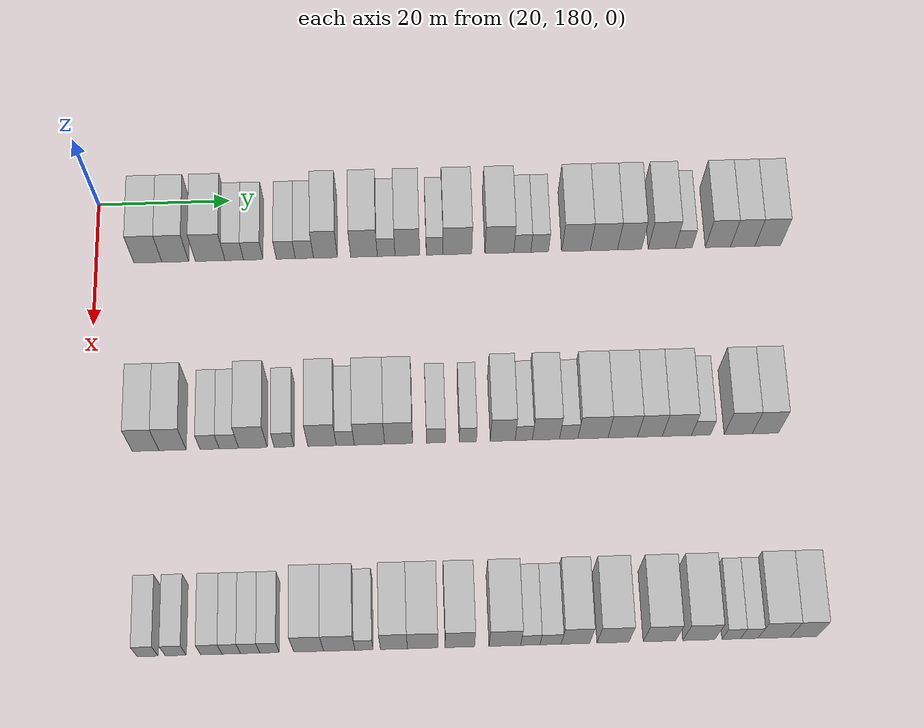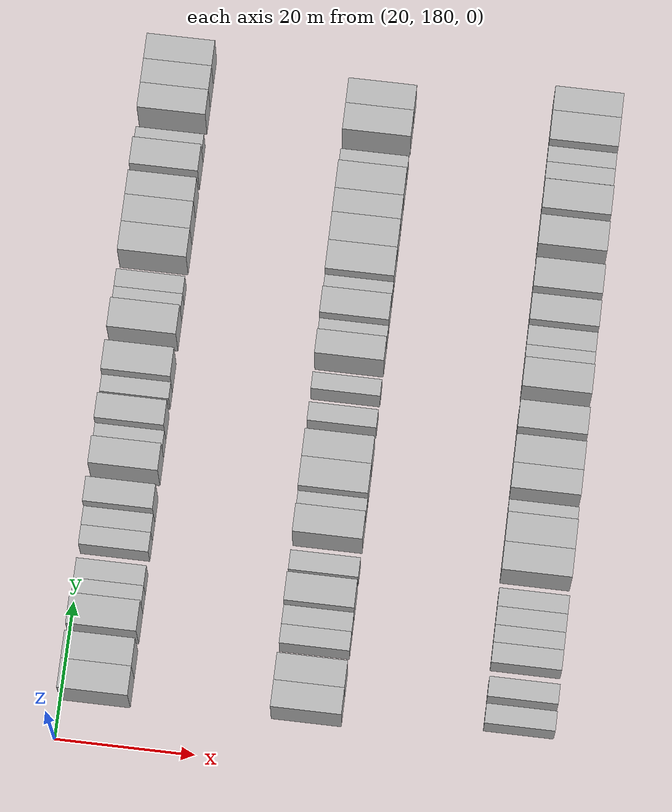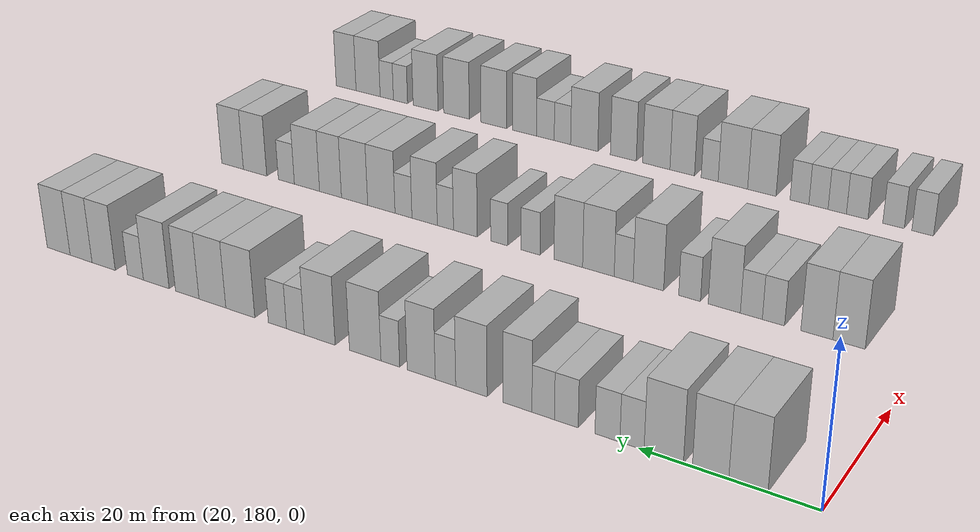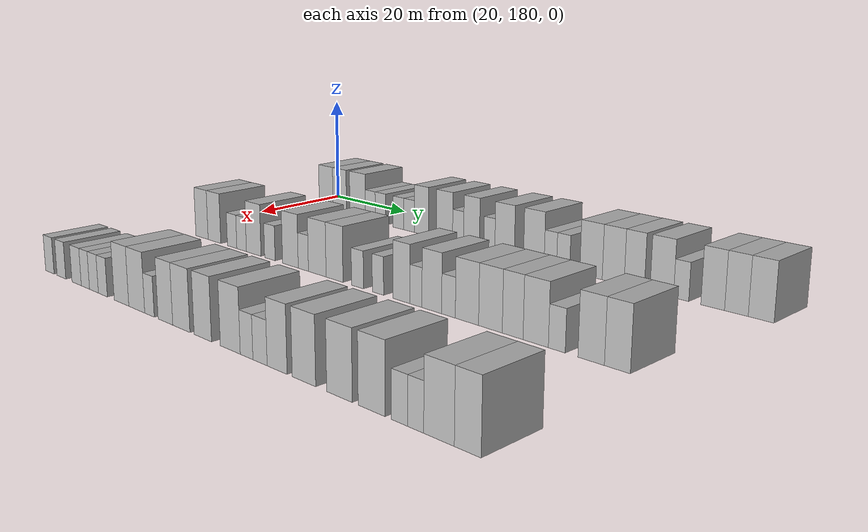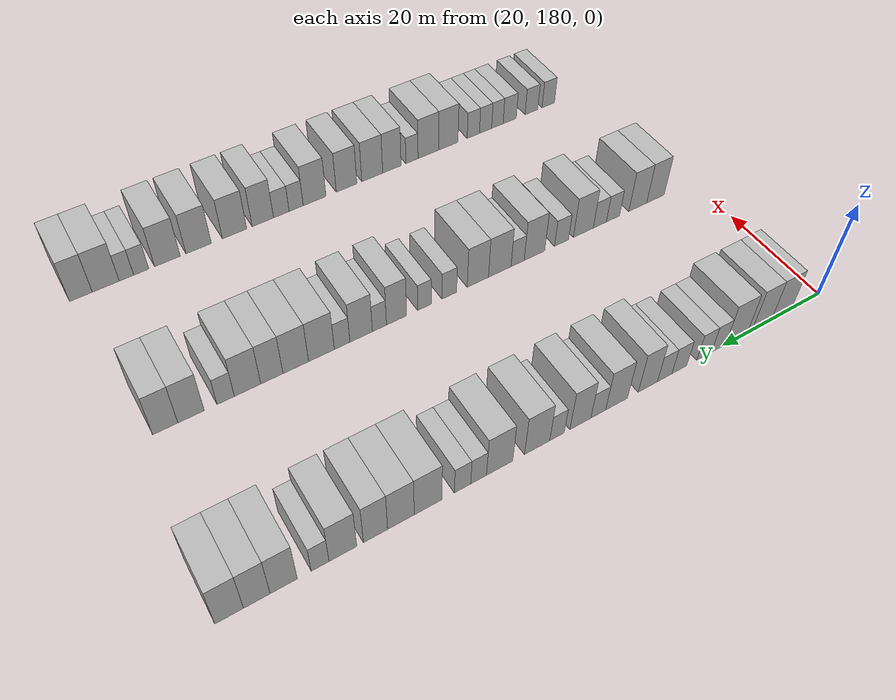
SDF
<sdf version="1.6">
 <world name="default">
  <model name="building_120">
   <static>1</static>
   <pose>25.0000 187.8005 0 0.000000 0.000000 0.000000</pose>
   <link name="link">
    <pose>0 0 4.50 0 0 0</pose>
    <collision name="collision"><geometry><box><size>10.0000 4.2273 9.0000</size></box></geometry></collision>
    <visual name="visual">
     <cast_shadows>0</cast_shadows>
     <geometry><box><size>10.0000 4.2273 9.0000</size></box></geometry>
     <material>
      <script>
       <uri>model://HANNAS_wall/materials/scripts</uri>
       <uri>model://HANNAS_wall/materials/textures</uri>
       <name>vrc/HANNAS_wall</name>
      </script>
     </material>
    </visual>
   </link>
  </model>
  <model name="building_121">
   <static>1</static>
   <pose>25.0000 191.9243 0 0.000000 0.000000 0.000000</pose>
   <link name="link">
    <pose>0 0 4.50 0 0 0</pose>
    <collision name="collision"><geometry><box><size>10.0000 4.0204 9.0000</size></box></geometry></collision>
    <visual name="visual">
     <cast_shadows>0</cast_shadows>
     <geometry><box><size>10.0000 4.0204 9.0000</size></box></geometry>
     <material>
      <script>
       <uri>model://HANNAS_wall/materials/scripts</uri>
       <uri>model://HANNAS_wall/materials/textures</uri>
       <name>vrc/HANNAS_wall</name>
      </script>
     </material>
    </visual>
   </link>
  </model>
  <model name="building_122">
   <static>1</static>
   <pose>25.0000 197.1687 0 0.000000 0.000000 0.000000</pose>
   <link name="link">
    <pose>0 0 4.50 0 0 0</pose>
    <collision name="collision"><geometry><box><size>10.0000 4.4684 9.0000</size></box></geometry></collision>
    <visual name="visual">
     <cast_shadows>0</cast_shadows>
     <geometry><box><size>10.0000 4.4684 9.0000</size></box></geometry>
     <material>
      <script>
       <uri>model://HANNAS_wall/materials/scripts</uri>
       <uri>model://HANNAS_wall/materials/textures</uri>
       <name>vrc/HANNAS_wall</name>
      </script>
     </material>
    </visual>
   </link>
  </model>
  <model name="building_123">
   <static>1</static>
   <pose>25.0000 200.8013 0 0.000000 0.000000 0.000000</pose>
   <link name="link">
    <pose>0 0 3.00 0 0 0</pose>
    <collision name="collision"><geometry><box><size>10.0000 2.7968 6.0000</size></box></geometry></collision>
    <visual name="visual">
     <cast_shadows>0</cast_shadows>
     <geometry><box><size>10.0000 2.7968 6.0000</size></box></geometry>
     <material>
      <script>
       <uri>model://HANNAS_wall/materials/scripts</uri>
       <uri>model://HANNAS_wall/materials/textures</uri>
       <name>vrc/HANNAS_wall</name>
      </script>
     </material>
    </visual>
   </link>
  </model>
  <model name="building_124">
   <static>1</static>
   <pose>25.0000 203.6655 0 0.000000 0.000000 0.000000</pose>
   <link name="link">
    <pose>0 0 3.00 0 0 0</pose>
    <collision name="collision"><geometry><box><size>10.0000 2.9315 6.0000</size></box></geometry></collision>
    <visual name="visual">
     <cast_shadows>0</cast_shadows>
     <geometry><box><size>10.0000 2.9315 6.0000</size></box></geometry>
     <material>
      <script>
       <uri>model://HANNAS_wall/materials/scripts</uri>
       <uri>model://HANNAS_wall/materials/textures</uri>
       <name>vrc/HANNAS_wall</name>
      </script>
     </material>
    </visual>
   </link>
  </model>
  <model name="building_125">
   <static>1</static>
   <pose>25.0000 208.5610 0 0.000000 0.000000 0.000000</pose>
   <link name="link">
    <pose>0 0 3.00 0 0 0</pose>
    <collision name="collision"><geometry><box><size>10.0000 2.8596 6.0000</size></box></geometry></collision>
    <visual name="visual">
     <cast_shadows>0</cast_shadows>
     <geometry><box><size>10.0000 2.8596 6.0000</size></box></geometry>
     <material>
      <script>
       <uri>model://HANNAS_wall/materials/scripts</uri>
       <uri>model://HANNAS_wall/materials/textures</uri>
       <name>vrc/HANNAS_wall</name>
      </script>
     </material>
    </visual>
   </link>
  </model>
  <model name="building_126">
   <static>1</static>
   <pose>25.0000 211.3667 0 0.000000 0.000000 0.000000</pose>
   <link name="link">
    <pose>0 0 3.00 0 0 0</pose>
    <collision name="collision"><geometry><box><size>10.0000 2.7517 6.0000</size></box></geometry></collision>
    <visual name="visual">
     <cast_shadows>0</cast_shadows>
     <geometry><box><size>10.0000 2.7517 6.0000</size></box></geometry>
     <material>
      <script>
       <uri>model://HANNAS_wall/materials/scripts</uri>
       <uri>model://HANNAS_wall/materials/textures</uri>
       <name>vrc/HANNAS_wall</name>
      </script>
     </material>
    </visual>
   </link>
  </model>
  <model name="building_127">
   <static>1</static>
   <pose>25.0000 214.5508 0 0.000000 0.000000 0.000000</pose>
   <link name="link">
    <pose>0 0 4.50 0 0 0</pose>
    <collision name="collision"><geometry><box><size>10.0000 3.6166 9.0000</size></box></geometry></collision>
    <visual name="visual">
     <cast_shadows>0</cast_shadows>
     <geometry><box><size>10.0000 3.6166 9.0000</size></box></geometry>
     <material>
      <script>
       <uri>model://HANNAS_wall/materials/scripts</uri>
       <uri>model://HANNAS_wall/materials/textures</uri>
       <name>vrc/HANNAS_wall</name>
      </script>
     </material>
    </visual>
   </link>
  </model>
  <model name="building_128">
   <static>1</static>
   <pose>25.0000 220.3657 0 0.000000 0.000000 0.000000</pose>
   <link name="link">
    <pose>0 0 4.50 0 0 0</pose>
    <collision name="collision"><geometry><box><size>10.0000 4.0132 9.0000</size></box></geometry></collision>
    <visual name="visual">
     <cast_shadows>0</cast_shadows>
     <geometry><box><size>10.0000 4.0132 9.0000</size></box></geometry>
     <material>
      <script>
       <uri>model://HANNAS_wall/materials/scripts</uri>
       <uri>model://HANNAS_wall/materials/textures</uri>
       <name>vrc/HANNAS_wall</name>
      </script>
     </material>
    </visual>
   </link>
  </model>
  <model name="building_129">
   <static>1</static>
   <pose>25.0000 223.7065 0 0.000000 0.000000 0.000000</pose>
   <link name="link">
    <pose>0 0 3.00 0 0 0</pose>
    <collision name="collision"><geometry><box><size>10.0000 2.6684 6.0000</size></box></geometry></collision>
    <visual name="visual">
     <cast_shadows>0</cast_shadows>
     <geometry><box><size>10.0000 2.6684 6.0000</size></box></geometry>
     <material>
      <script>
       <uri>model://HANNAS_wall/materials/scripts</uri>
       <uri>model://HANNAS_wall/materials/textures</uri>
       <name>vrc/HANNAS_wall</name>
      </script>
     </material>
    </visual>
   </link>
  </model>
  <model name="building_130">
   <static>1</static>
   <pose>25.0000 226.9014 0 0.000000 0.000000 0.000000</pose>
   <link name="link">
    <pose>0 0 4.50 0 0 0</pose>
    <collision name="collision"><geometry><box><size>10.0000 3.7215 9.0000</size></box></geometry></collision>
    <visual name="visual">
     <cast_shadows>0</cast_shadows>
     <geometry><box><size>10.0000 3.7215 9.0000</size></box></geometry>
     <material>
      <script>
       <uri>model://HANNAS_wall/materials/scripts</uri>
       <uri>model://HANNAS_wall/materials/textures</uri>
       <name>vrc/HANNAS_wall</name>
      </script>
     </material>
    </visual>
   </link>
  </model>
  <model name="building_131">
   <static>1</static>
   <pose>25.0000 231.0254 0 0.000000 0.000000 0.000000</pose>
   <link name="link">
    <pose>0 0 3.00 0 0 0</pose>
    <collision name="collision"><geometry><box><size>10.0000 2.5264 6.0000</size></box></geometry></collision>
    <visual name="visual">
     <cast_shadows>0</cast_shadows>
     <geometry><box><size>10.0000 2.5264 6.0000</size></box></geometry>
     <material>
      <script>
       <uri>model://HANNAS_wall/materials/scripts</uri>
       <uri>model://HANNAS_wall/materials/textures</uri>
       <name>vrc/HANNAS_wall</name>
      </script>
     </material>
    </visual>
   </link>
  </model>
  <model name="building_132">
   <static>1</static>
   <pose>25.0000 234.4583 0 0.000000 0.000000 0.000000</pose>
   <link name="link">
    <pose>0 0 4.50 0 0 0</pose>
    <collision name="collision"><geometry><box><size>10.0000 4.3394 9.0000</size></box></geometry></collision>
    <visual name="visual">
     <cast_shadows>0</cast_shadows>
     <geometry><box><size>10.0000 4.3394 9.0000</size></box></geometry>
     <material>
      <script>
       <uri>model://HANNAS_wall/materials/scripts</uri>
       <uri>model://HANNAS_wall/materials/textures</uri>
       <name>vrc/HANNAS_wall</name>
      </script>
     </material>
    </visual>
   </link>
  </model>
  <model name="building_133">
   <static>1</static>
   <pose>25.0000 240.8161 0 0.000000 0.000000 0.000000</pose>
   <link name="link">
    <pose>0 0 4.50 0 0 0</pose>
    <collision name="collision"><geometry><box><size>10.0000 4.3761 9.0000</size></box></geometry></collision>
    <visual name="visual">
     <cast_shadows>0</cast_shadows>
     <geometry><box><size>10.0000 4.3761 9.0000</size></box></geometry>
     <material>
      <script>
       <uri>model://HANNAS_wall/materials/scripts</uri>
       <uri>model://HANNAS_wall/materials/textures</uri>
       <name>vrc/HANNAS_wall</name>
      </script>
     </material>
    </visual>
   </link>
  </model>
  <model name="building_134">
   <static>1</static>
   <pose>25.0000 244.2893 0 0.000000 0.000000 0.000000</pose>
   <link name="link">
    <pose>0 0 3.00 0 0 0</pose>
    <collision name="collision"><geometry><box><size>10.0000 2.5704 6.0000</size></box></geometry></collision>
    <visual name="visual">
     <cast_shadows>0</cast_shadows>
     <geometry><box><size>10.0000 2.5704 6.0000</size></box></geometry>
     <material>
      <script>
       <uri>model://HANNAS_wall/materials/scripts</uri>
       <uri>model://HANNAS_wall/materials/textures</uri>
       <name>vrc/HANNAS_wall</name>
      </script>
     </material>
    </visual>
   </link>
  </model>
  <model name="building_135">
   <static>1</static>
   <pose>25.0000 246.9005 0 0.000000 0.000000 0.000000</pose>
   <link name="link">
    <pose>0 0 3.00 0 0 0</pose>
    <collision name="collision"><geometry><box><size>10.0000 2.6520 6.0000</size></box></geometry></collision>
    <visual name="visual">
     <cast_shadows>0</cast_shadows>
     <geometry><box><size>10.0000 2.6520 6.0000</size></box></geometry>
     <material>
      <script>
       <uri>model://HANNAS_wall/materials/scripts</uri>
       <uri>model://HANNAS_wall/materials/textures</uri>
       <name>vrc/HANNAS_wall</name>
      </script>
     </material>
    </visual>
   </link>
  </model>
  <model name="building_136">
   <static>1</static>
   <pose>25.0000 252.3962 0 0.000000 0.000000 0.000000</pose>
   <link name="link">
    <pose>0 0 4.50 0 0 0</pose>
    <collision name="collision"><geometry><box><size>10.0000 4.3394 9.0000</size></box></geometry></collision>
    <visual name="visual">
     <cast_shadows>0</cast_shadows>
     <geometry><box><size>10.0000 4.3394 9.0000</size></box></geometry>
     <material>
      <script>
       <uri>model://HANNAS_wall/materials/scripts</uri>
       <uri>model://HANNAS_wall/materials/textures</uri>
       <name>vrc/HANNAS_wall</name>
      </script>
     </material>
    </visual>
   </link>
  </model>
  <model name="building_137">
   <static>1</static>
   <pose>25.0000 256.6175 0 0.000000 0.000000 0.000000</pose>
   <link name="link">
    <pose>0 0 4.50 0 0 0</pose>
    <collision name="collision"><geometry><box><size>10.0000 4.1031 9.0000</size></box></geometry></collision>
    <visual name="visual">
     <cast_shadows>0</cast_shadows>
     <geometry><box><size>10.0000 4.1031 9.0000</size></box></geometry>
     <material>
      <script>
       <uri>model://HANNAS_wall/materials/scripts</uri>
       <uri>model://HANNAS_wall/materials/textures</uri>
       <name>vrc/HANNAS_wall</name>
      </script>
     </material>
    </visual>
   </link>
  </model>
  <model name="building_138">
   <static>1</static>
   <pose>25.0000 260.4975 0 0.000000 0.000000 0.000000</pose>
   <link name="link">
    <pose>0 0 4.50 0 0 0</pose>
    <collision name="collision"><geometry><box><size>10.0000 3.6569 9.0000</size></box></geometry></collision>
    <visual name="visual">
     <cast_shadows>0</cast_shadows>
     <geometry><box><size>10.0000 3.6569 9.0000</size></box></geometry>
     <material>
      <script>
       <uri>model://HANNAS_wall/materials/scripts</uri>
       <uri>model://HANNAS_wall/materials/textures</uri>
       <name>vrc/HANNAS_wall</name>
      </script>
     </material>
    </visual>
   </link>
  </model>
  <model name="building_139">
   <static>1</static>
   <pose>25.0000 265.3709 0 0.000000 0.000000 0.000000</pose>
   <link name="link">
    <pose>0 0 4.50 0 0 0</pose>
    <collision name="collision"><geometry><box><size>10.0000 4.0900 9.0000</size></box></geometry></collision>
    <visual name="visual">
     <cast_shadows>0</cast_shadows>
     <geometry><box><size>10.0000 4.0900 9.0000</size></box></geometry>
     <material>
      <script>
       <uri>model://HANNAS_wall/materials/scripts</uri>
       <uri>model://HANNAS_wall/materials/textures</uri>
       <name>vrc/HANNAS_wall</name>
      </script>
     </material>
    </visual>
   </link>
  </model>
  <model name="building_140">
   <static>1</static>
   <pose>25.0000 268.7047 0 0.000000 0.000000 0.000000</pose>
   <link name="link">
    <pose>0 0 3.00 0 0 0</pose>
    <collision name="collision"><geometry><box><size>10.0000 2.5776 6.0000</size></box></geometry></collision>
    <visual name="visual">
     <cast_shadows>0</cast_shadows>
     <geometry><box><size>10.0000 2.5776 6.0000</size></box></geometry>
     <material>
      <script>
       <uri>model://HANNAS_wall/materials/scripts</uri>
       <uri>model://HANNAS_wall/materials/textures</uri>
       <name>vrc/HANNAS_wall</name>
      </script>
     </material>
    </visual>
   </link>
  </model>
  <model name="building_141">
   <static>1</static>
   <pose>25.0000 273.9103 0 0.000000 0.000000 0.000000</pose>
   <link name="link">
    <pose>0 0 4.50 0 0 0</pose>
    <collision name="collision"><geometry><box><size>10.0000 3.8334 9.0000</size></box></geometry></collision>
    <visual name="visual">
     <cast_shadows>0</cast_shadows>
     <geometry><box><size>10.0000 3.8334 9.0000</size></box></geometry>
     <material>
      <script>
       <uri>model://HANNAS_wall/materials/scripts</uri>
       <uri>model://HANNAS_wall/materials/textures</uri>
       <name>vrc/HANNAS_wall</name>
      </script>
     </material>
    </visual>
   </link>
  </model>
  <model name="building_142">
   <static>1</static>
   <pose>25.0000 277.6731 0 0.000000 0.000000 0.000000</pose>
   <link name="link">
    <pose>0 0 4.50 0 0 0</pose>
    <collision name="collision"><geometry><box><size>10.0000 3.6922 9.0000</size></box></geometry></collision>
    <visual name="visual">
     <cast_shadows>0</cast_shadows>
     <geometry><box><size>10.0000 3.6922 9.0000</size></box></geometry>
     <material>
      <script>
       <uri>model://HANNAS_wall/materials/scripts</uri>
       <uri>model://HANNAS_wall/materials/textures</uri>
       <name>vrc/HANNAS_wall</name>
      </script>
     </material>
    </visual>
   </link>
  </model>
  <model name="building_143">
   <static>1</static>
   <pose>25.0000 281.4730 0 0.000000 0.000000 0.000000</pose>
   <link name="link">
    <pose>0 0 4.50 0 0 0</pose>
    <collision name="collision"><geometry><box><size>10.0000 3.9077 9.0000</size></box></geometry></collision>
    <visual name="visual">
     <cast_shadows>0</cast_shadows>
     <geometry><box><size>10.0000 3.9077 9.0000</size></box></geometry>
     <material>
      <script>
       <uri>model://HANNAS_wall/materials/scripts</uri>
       <uri>model://HANNAS_wall/materials/textures</uri>
       <name>vrc/HANNAS_wall</name>
      </script>
     </material>
    </visual>
   </link>
  </model>
  <model name="building_257">
   <static>1</static>
   <pose>55.0000 188.4252 0 0.000000 0.000000 0.000000</pose>
   <link name="link">
    <pose>0 0 4.50 0 0 0</pose>
    <collision name="collision"><geometry><box><size>10.0000 3.8696 9.0000</size></box></geometry></collision>
    <visual name="visual">
     <cast_shadows>0</cast_shadows>
     <geometry><box><size>10.0000 3.8696 9.0000</size></box></geometry>
     <material>
      <script>
       <uri>model://HANNAS_wall/materials/scripts</uri>
       <uri>model://HANNAS_wall/materials/textures</uri>
       <name>vrc/HANNAS_wall</name>
      </script>
     </material>
    </visual>
   </link>
  </model>
  <model name="building_258">
   <static>1</static>
   <pose>55.0000 192.3124 0 0.000000 0.000000 0.000000</pose>
   <link name="link">
    <pose>0 0 4.50 0 0 0</pose>
    <collision name="collision"><geometry><box><size>10.0000 3.9046 9.0000</size></box></geometry></collision>
    <visual name="visual">
     <cast_shadows>0</cast_shadows>
     <geometry><box><size>10.0000 3.9046 9.0000</size></box></geometry>
     <material>
      <script>
       <uri>model://HANNAS_wall/materials/scripts</uri>
       <uri>model://HANNAS_wall/materials/textures</uri>
       <name>vrc/HANNAS_wall</name>
      </script>
     </material>
    </visual>
   </link>
  </model>
  <model name="building_259">
   <static>1</static>
   <pose>55.0000 197.6571 0 0.000000 0.000000 0.000000</pose>
   <link name="link">
    <pose>0 0 3.00 0 0 0</pose>
    <collision name="collision"><geometry><box><size>10.0000 2.7849 6.0000</size></box></geometry></collision>
    <visual name="visual">
     <cast_shadows>0</cast_shadows>
     <geometry><box><size>10.0000 2.7849 6.0000</size></box></geometry>
     <material>
      <script>
       <uri>model://HANNAS_wall/materials/scripts</uri>
       <uri>model://HANNAS_wall/materials/textures</uri>
       <name>vrc/HANNAS_wall</name>
      </script>
     </material>
    </visual>
   </link>
  </model>
  <model name="building_260">
   <static>1</static>
   <pose>55.0000 200.4428 0 0.000000 0.000000 0.000000</pose>
   <link name="link">
    <pose>0 0 3.00 0 0 0</pose>
    <collision name="collision"><geometry><box><size>10.0000 2.7865 6.0000</size></box></geometry></collision>
    <visual name="visual">
     <cast_shadows>0</cast_shadows>
     <geometry><box><size>10.0000 2.7865 6.0000</size></box></geometry>
     <material>
      <script>
       <uri>model://HANNAS_wall/materials/scripts</uri>
       <uri>model://HANNAS_wall/materials/textures</uri>
       <name>vrc/HANNAS_wall</name>
      </script>
     </material>
    </visual>
   </link>
  </model>
  <model name="building_261">
   <static>1</static>
   <pose>55.0000 203.9054 0 0.000000 0.000000 0.000000</pose>
   <link name="link">
    <pose>0 0 4.50 0 0 0</pose>
    <collision name="collision"><geometry><box><size>10.0000 4.1386 9.0000</size></box></geometry></collision>
    <visual name="visual">
     <cast_shadows>0</cast_shadows>
     <geometry><box><size>10.0000 4.1386 9.0000</size></box></geometry>
     <material>
      <script>
       <uri>model://HANNAS_wall/materials/scripts</uri>
       <uri>model://HANNAS_wall/materials/textures</uri>
       <name>vrc/HANNAS_wall</name>
      </script>
     </material>
    </visual>
   </link>
  </model>
  <model name="building_262">
   <static>1</static>
   <pose>55.0000 208.4081 0 0.000000 0.000000 0.000000</pose>
   <link name="link">
    <pose>0 0 3.00 0 0 0</pose>
    <collision name="collision"><geometry><box><size>10.0000 2.8669 6.0000</size></box></geometry></collision>
    <visual name="visual">
     <cast_shadows>0</cast_shadows>
     <geometry><box><size>10.0000 2.8669 6.0000</size></box></geometry>
     <material>
      <script>
       <uri>model://HANNAS_wall/materials/scripts</uri>
       <uri>model://HANNAS_wall/materials/textures</uri>
       <name>vrc/HANNAS_wall</name>
      </script>
     </material>
    </visual>
   </link>
  </model>
  <model name="building_263">
   <static>1</static>
   <pose>55.0000 213.8938 0 0.000000 0.000000 0.000000</pose>
   <link name="link">
    <pose>0 0 4.50 0 0 0</pose>
    <collision name="collision"><geometry><box><size>10.0000 4.1045 9.0000</size></box></geometry></collision>
    <visual name="visual">
     <cast_shadows>0</cast_shadows>
     <geometry><box><size>10.0000 4.1045 9.0000</size></box></geometry>
     <material>
      <script>
       <uri>model://HANNAS_wall/materials/scripts</uri>
       <uri>model://HANNAS_wall/materials/textures</uri>
       <name>vrc/HANNAS_wall</name>
      </script>
     </material>
    </visual>
   </link>
  </model>
  <model name="building_264">
   <static>1</static>
   <pose>55.0000 217.2453 0 0.000000 0.000000 0.000000</pose>
   <link name="link">
    <pose>0 0 3.00 0 0 0</pose>
    <collision name="collision"><geometry><box><size>10.0000 2.5987 6.0000</size></box></geometry></collision>
    <visual name="visual">
     <cast_shadows>0</cast_shadows>
     <geometry><box><size>10.0000 2.5987 6.0000</size></box></geometry>
     <material>
      <script>
       <uri>model://HANNAS_wall/materials/scripts</uri>
       <uri>model://HANNAS_wall/materials/textures</uri>
       <name>vrc/HANNAS_wall</name>
      </script>
     </material>
    </visual>
   </link>
  </model>
  <model name="building_265">
   <static>1</static>
   <pose>55.0000 220.7393 0 0.000000 0.000000 0.000000</pose>
   <link name="link">
    <pose>0 0 4.50 0 0 0</pose>
    <collision name="collision"><geometry><box><size>10.0000 4.3893 9.0000</size></box></geometry></collision>
    <visual name="visual">
     <cast_shadows>0</cast_shadows>
     <geometry><box><size>10.0000 4.3893 9.0000</size></box></geometry>
     <material>
      <script>
       <uri>model://HANNAS_wall/materials/scripts</uri>
       <uri>model://HANNAS_wall/materials/textures</uri>
       <name>vrc/HANNAS_wall</name>
      </script>
     </material>
    </visual>
   </link>
  </model>
  <model name="building_266">
   <static>1</static>
   <pose>55.0000 224.9621 0 0.000000 0.000000 0.000000</pose>
   <link name="link">
    <pose>0 0 4.50 0 0 0</pose>
    <collision name="collision"><geometry><box><size>10.0000 4.0562 9.0000</size></box></geometry></collision>
    <visual name="visual">
     <cast_shadows>0</cast_shadows>
     <geometry><box><size>10.0000 4.0562 9.0000</size></box></geometry>
     <material>
      <script>
       <uri>model://HANNAS_wall/materials/scripts</uri>
       <uri>model://HANNAS_wall/materials/textures</uri>
       <name>vrc/HANNAS_wall</name>
      </script>
     </material>
    </visual>
   </link>
  </model>
  <model name="building_267">
   <static>1</static>
   <pose>55.0000 230.3581 0 0.000000 0.000000 0.000000</pose>
   <link name="link">
    <pose>0 0 3.00 0 0 0</pose>
    <collision name="collision"><geometry><box><size>10.0000 2.7359 6.0000</size></box></geometry></collision>
    <visual name="visual">
     <cast_shadows>0</cast_shadows>
     <geometry><box><size>10.0000 2.7359 6.0000</size></box></geometry>
     <material>
      <script>
       <uri>model://HANNAS_wall/materials/scripts</uri>
       <uri>model://HANNAS_wall/materials/textures</uri>
       <name>vrc/HANNAS_wall</name>
      </script>
     </material>
    </visual>
   </link>
  </model>
  <model name="building_268">
   <static>1</static>
   <pose>55.0000 234.9723 0 0.000000 0.000000 0.000000</pose>
   <link name="link">
    <pose>0 0 3.00 0 0 0</pose>
    <collision name="collision"><geometry><box><size>10.0000 2.4926 6.0000</size></box></geometry></collision>
    <visual name="visual">
     <cast_shadows>0</cast_shadows>
     <geometry><box><size>10.0000 2.4926 6.0000</size></box></geometry>
     <material>
      <script>
       <uri>model://HANNAS_wall/materials/scripts</uri>
       <uri>model://HANNAS_wall/materials/textures</uri>
       <name>vrc/HANNAS_wall</name>
      </script>
     </material>
    </visual>
   </link>
  </model>
  <model name="building_269">
   <static>1</static>
   <pose>55.0000 240.0213 0 0.000000 0.000000 0.000000</pose>
   <link name="link">
    <pose>0 0 4.50 0 0 0</pose>
    <collision name="collision"><geometry><box><size>10.0000 3.6052 9.0000</size></box></geometry></collision>
    <visual name="visual">
     <cast_shadows>0</cast_shadows>
     <geometry><box><size>10.0000 3.6052 9.0000</size></box></geometry>
     <material>
      <script>
       <uri>model://HANNAS_wall/materials/scripts</uri>
       <uri>model://HANNAS_wall/materials/textures</uri>
       <name>vrc/HANNAS_wall</name>
      </script>
     </material>
    </visual>
   </link>
  </model>
  <model name="building_270">
   <static>1</static>
   <pose>55.0000 243.0652 0 0.000000 0.000000 0.000000</pose>
   <link name="link">
    <pose>0 0 3.00 0 0 0</pose>
    <collision name="collision"><geometry><box><size>10.0000 2.4827 6.0000</size></box></geometry></collision>
    <visual name="visual">
     <cast_shadows>0</cast_shadows>
     <geometry><box><size>10.0000 2.4827 6.0000</size></box></geometry>
     <material>
      <script>
       <uri>model://HANNAS_wall/materials/scripts</uri>
       <uri>model://HANNAS_wall/materials/textures</uri>
       <name>vrc/HANNAS_wall</name>
      </script>
     </material>
    </visual>
   </link>
  </model>
  <model name="building_271">
   <static>1</static>
   <pose>55.0000 246.2751 0 0.000000 0.000000 0.000000</pose>
   <link name="link">
    <pose>0 0 4.50 0 0 0</pose>
    <collision name="collision"><geometry><box><size>10.0000 3.9370 9.0000</size></box></geometry></collision>
    <visual name="visual">
     <cast_shadows>0</cast_shadows>
     <geometry><box><size>10.0000 3.9370 9.0000</size></box></geometry>
     <material>
      <script>
       <uri>model://HANNAS_wall/materials/scripts</uri>
       <uri>model://HANNAS_wall/materials/textures</uri>
       <name>vrc/HANNAS_wall</name>
      </script>
     </material>
    </visual>
   </link>
  </model>
  <model name="building_272">
   <static>1</static>
   <pose>55.0000 249.5749 0 0.000000 0.000000 0.000000</pose>
   <link name="link">
    <pose>0 0 3.00 0 0 0</pose>
    <collision name="collision"><geometry><box><size>10.0000 2.6627 6.0000</size></box></geometry></collision>
    <visual name="visual">
     <cast_shadows>0</cast_shadows>
     <geometry><box><size>10.0000 2.6627 6.0000</size></box></geometry>
     <material>
      <script>
       <uri>model://HANNAS_wall/materials/scripts</uri>
       <uri>model://HANNAS_wall/materials/textures</uri>
       <name>vrc/HANNAS_wall</name>
      </script>
     </material>
    </visual>
   </link>
  </model>
  <model name="building_273">
   <static>1</static>
   <pose>55.0000 253.0915 0 0.000000 0.000000 0.000000</pose>
   <link name="link">
    <pose>0 0 4.50 0 0 0</pose>
    <collision name="collision"><geometry><box><size>10.0000 4.3704 9.0000</size></box></geometry></collision>
    <visual name="visual">
     <cast_shadows>0</cast_shadows>
     <geometry><box><size>10.0000 4.3704 9.0000</size></box></geometry>
     <material>
      <script>
       <uri>model://HANNAS_wall/materials/scripts</uri>
       <uri>model://HANNAS_wall/materials/textures</uri>
       <name>vrc/HANNAS_wall</name>
      </script>
     </material>
    </visual>
   </link>
  </model>
  <model name="building_274">
   <static>1</static>
   <pose>55.0000 257.4136 0 0.000000 0.000000 0.000000</pose>
   <link name="link">
    <pose>0 0 4.50 0 0 0</pose>
    <collision name="collision"><geometry><box><size>10.0000 4.2739 9.0000</size></box></geometry></collision>
    <visual name="visual">
     <cast_shadows>0</cast_shadows>
     <geometry><box><size>10.0000 4.2739 9.0000</size></box></geometry>
     <material>
      <script>
       <uri>model://HANNAS_wall/materials/scripts</uri>
       <uri>model://HANNAS_wall/materials/textures</uri>
       <name>vrc/HANNAS_wall</name>
      </script>
     </material>
    </visual>
   </link>
  </model>
  <model name="building_275">
   <static>1</static>
   <pose>55.0000 261.3631 0 0.000000 0.000000 0.000000</pose>
   <link name="link">
    <pose>0 0 4.50 0 0 0</pose>
    <collision name="collision"><geometry><box><size>10.0000 3.6250 9.0000</size></box></geometry></collision>
    <visual name="visual">
     <cast_shadows>0</cast_shadows>
     <geometry><box><size>10.0000 3.6250 9.0000</size></box></geometry>
     <material>
      <script>
       <uri>model://HANNAS_wall/materials/scripts</uri>
       <uri>model://HANNAS_wall/materials/textures</uri>
       <name>vrc/HANNAS_wall</name>
      </script>
     </material>
    </visual>
   </link>
  </model>
  <model name="building_276">
   <static>1</static>
   <pose>55.0000 265.2939 0 0.000000 0.000000 0.000000</pose>
   <link name="link">
    <pose>0 0 4.50 0 0 0</pose>
    <collision name="collision"><geometry><box><size>10.0000 4.2366 9.0000</size></box></geometry></collision>
    <visual name="visual">
     <cast_shadows>0</cast_shadows>
     <geometry><box><size>10.0000 4.2366 9.0000</size></box></geometry>
     <material>
      <script>
       <uri>model://HANNAS_wall/materials/scripts</uri>
       <uri>model://HANNAS_wall/materials/textures</uri>
       <name>vrc/HANNAS_wall</name>
      </script>
     </material>
    </visual>
   </link>
  </model>
  <model name="building_277">
   <static>1</static>
   <pose>55.0000 268.7820 0 0.000000 0.000000 0.000000</pose>
   <link name="link">
    <pose>0 0 3.00 0 0 0</pose>
    <collision name="collision"><geometry><box><size>10.0000 2.7397 6.0000</size></box></geometry></collision>
    <visual name="visual">
     <cast_shadows>0</cast_shadows>
     <geometry><box><size>10.0000 2.7397 6.0000</size></box></geometry>
     <material>
      <script>
       <uri>model://HANNAS_wall/materials/scripts</uri>
       <uri>model://HANNAS_wall/materials/textures</uri>
       <name>vrc/HANNAS_wall</name>
      </script>
     </material>
    </visual>
   </link>
  </model>
  <model name="building_278">
   <static>1</static>
   <pose>55.0000 274.1859 0 0.000000 0.000000 0.000000</pose>
   <link name="link">
    <pose>0 0 4.50 0 0 0</pose>
    <collision name="collision"><geometry><box><size>10.0000 4.0681 9.0000</size></box></geometry></collision>
    <visual name="visual">
     <cast_shadows>0</cast_shadows>
     <geometry><box><size>10.0000 4.0681 9.0000</size></box></geometry>
     <material>
      <script>
       <uri>model://HANNAS_wall/materials/scripts</uri>
       <uri>model://HANNAS_wall/materials/textures</uri>
       <name>vrc/HANNAS_wall</name>
      </script>
     </material>
    </visual>
   </link>
  </model>
  <model name="building_279">
   <static>1</static>
   <pose>55.0000 278.1350 0 0.000000 0.000000 0.000000</pose>
   <link name="link">
    <pose>0 0 4.50 0 0 0</pose>
    <collision name="collision"><geometry><box><size>10.0000 3.8301 9.0000</size></box></geometry></collision>
    <visual name="visual">
     <cast_shadows>0</cast_shadows>
     <geometry><box><size>10.0000 3.8301 9.0000</size></box></geometry>
     <material>
      <script>
       <uri>model://HANNAS_wall/materials/scripts</uri>
       <uri>model://HANNAS_wall/materials/textures</uri>
       <name>vrc/HANNAS_wall</name>
      </script>
     </material>
    </visual>
   </link>
  </model>
  <model name="building_400">
   <static>1</static>
   <pose>85.0000 189.6875 0 0.000000 0.000000 0.000000</pose>
   <link name="link">
    <pose>0 0 3.00 0 0 0</pose>
    <collision name="collision"><geometry><box><size>10.0000 2.8605 6.0000</size></box></geometry></collision>
    <visual name="visual">
     <cast_shadows>0</cast_shadows>
     <geometry><box><size>10.0000 2.8605 6.0000</size></box></geometry>
     <material>
      <script>
       <uri>model://HANNAS_wall/materials/scripts</uri>
       <uri>model://HANNAS_wall/materials/textures</uri>
       <name>vrc/HANNAS_wall</name>
      </script>
     </material>
    </visual>
   </link>
  </model>
  <model name="building_401">
   <static>1</static>
   <pose>85.0000 193.5605 0 0.000000 0.000000 0.000000</pose>
   <link name="link">
    <pose>0 0 3.00 0 0 0</pose>
    <collision name="collision"><geometry><box><size>10.0000 2.8855 6.0000</size></box></geometry></collision>
    <visual name="visual">
     <cast_shadows>0</cast_shadows>
     <geometry><box><size>10.0000 2.8855 6.0000</size></box></geometry>
     <material>
      <script>
       <uri>model://HANNAS_wall/materials/scripts</uri>
       <uri>model://HANNAS_wall/materials/textures</uri>
       <name>vrc/HANNAS_wall</name>
      </script>
     </material>
    </visual>
   </link>
  </model>
  <model name="building_402">
   <static>1</static>
   <pose>85.0000 198.4769 0 0.000000 0.000000 0.000000</pose>
   <link name="link">
    <pose>0 0 3.00 0 0 0</pose>
    <collision name="collision"><geometry><box><size>10.0000 2.9473 6.0000</size></box></geometry></collision>
    <visual name="visual">
     <cast_shadows>0</cast_shadows>
     <geometry><box><size>10.0000 2.9473 6.0000</size></box></geometry>
     <material>
      <script>
       <uri>model://HANNAS_wall/materials/scripts</uri>
       <uri>model://HANNAS_wall/materials/textures</uri>
       <name>vrc/HANNAS_wall</name>
      </script>
     </material>
    </visual>
   </link>
  </model>
  <model name="building_403">
   <static>1</static>
   <pose>85.0000 201.2212 0 0.000000 0.000000 0.000000</pose>
   <link name="link">
    <pose>0 0 3.00 0 0 0</pose>
    <collision name="collision"><geometry><box><size>10.0000 2.5412 6.0000</size></box></geometry></collision>
    <visual name="visual">
     <cast_shadows>0</cast_shadows>
     <geometry><box><size>10.0000 2.5412 6.0000</size></box></geometry>
     <material>
      <script>
       <uri>model://HANNAS_wall/materials/scripts</uri>
       <uri>model://HANNAS_wall/materials/textures</uri>
       <name>vrc/HANNAS_wall</name>
      </script>
     </material>
    </visual>
   </link>
  </model>
  <model name="building_404">
   <static>1</static>
   <pose>85.0000 203.8320 0 0.000000 0.000000 0.000000</pose>
   <link name="link">
    <pose>0 0 3.00 0 0 0</pose>
    <collision name="collision"><geometry><box><size>10.0000 2.6804 6.0000</size></box></geometry></collision>
    <visual name="visual">
     <cast_shadows>0</cast_shadows>
     <geometry><box><size>10.0000 2.6804 6.0000</size></box></geometry>
     <material>
      <script>
       <uri>model://HANNAS_wall/materials/scripts</uri>
       <uri>model://HANNAS_wall/materials/textures</uri>
       <name>vrc/HANNAS_wall</name>
      </script>
     </material>
    </visual>
   </link>
  </model>
  <model name="building_405">
   <static>1</static>
   <pose>85.0000 206.5065 0 0.000000 0.000000 0.000000</pose>
   <link name="link">
    <pose>0 0 3.00 0 0 0</pose>
    <collision name="collision"><geometry><box><size>10.0000 2.6688 6.0000</size></box></geometry></collision>
    <visual name="visual">
     <cast_shadows>0</cast_shadows>
     <geometry><box><size>10.0000 2.6688 6.0000</size></box></geometry>
     <material>
      <script>
       <uri>model://HANNAS_wall/materials/scripts</uri>
       <uri>model://HANNAS_wall/materials/textures</uri>
       <name>vrc/HANNAS_wall</name>
      </script>
     </material>
    </visual>
   </link>
  </model>
  <model name="building_406">
   <static>1</static>
   <pose>85.0000 211.8973 0 0.000000 0.000000 0.000000</pose>
   <link name="link">
    <pose>0 0 4.50 0 0 0</pose>
    <collision name="collision"><geometry><box><size>10.0000 4.1127 9.0000</size></box></geometry></collision>
    <visual name="visual">
     <cast_shadows>0</cast_shadows>
     <geometry><box><size>10.0000 4.1127 9.0000</size></box></geometry>
     <material>
      <script>
       <uri>model://HANNAS_wall/materials/scripts</uri>
       <uri>model://HANNAS_wall/materials/textures</uri>
       <name>vrc/HANNAS_wall</name>
      </script>
     </material>
    </visual>
   </link>
  </model>
  <model name="building_407">
   <static>1</static>
   <pose>85.0000 216.1263 0 0.000000 0.000000 0.000000</pose>
   <link name="link">
    <pose>0 0 4.50 0 0 0</pose>
    <collision name="collision"><geometry><box><size>10.0000 4.3455 9.0000</size></box></geometry></collision>
    <visual name="visual">
     <cast_shadows>0</cast_shadows>
     <geometry><box><size>10.0000 4.3455 9.0000</size></box></geometry>
     <material>
      <script>
       <uri>model://HANNAS_wall/materials/scripts</uri>
       <uri>model://HANNAS_wall/materials/textures</uri>
       <name>vrc/HANNAS_wall</name>
      </script>
     </material>
    </visual>
   </link>
  </model>
  <model name="building_408">
   <static>1</static>
   <pose>85.0000 219.5608 0 0.000000 0.000000 0.000000</pose>
   <link name="link">
    <pose>0 0 3.00 0 0 0</pose>
    <collision name="collision"><geometry><box><size>10.0000 2.5234 6.0000</size></box></geometry></collision>
    <visual name="visual">
     <cast_shadows>0</cast_shadows>
     <geometry><box><size>10.0000 2.5234 6.0000</size></box></geometry>
     <material>
      <script>
       <uri>model://HANNAS_wall/materials/scripts</uri>
       <uri>model://HANNAS_wall/materials/textures</uri>
       <name>vrc/HANNAS_wall</name>
      </script>
     </material>
    </visual>
   </link>
  </model>
  <model name="building_409">
   <static>1</static>
   <pose>85.0000 223.6883 0 0.000000 0.000000 0.000000</pose>
   <link name="link">
    <pose>0 0 4.50 0 0 0</pose>
    <collision name="collision"><geometry><box><size>10.0000 3.7315 9.0000</size></box></geometry></collision>
    <visual name="visual">
     <cast_shadows>0</cast_shadows>
     <geometry><box><size>10.0000 3.7315 9.0000</size></box></geometry>
     <material>
      <script>
       <uri>model://HANNAS_wall/materials/scripts</uri>
       <uri>model://HANNAS_wall/materials/textures</uri>
       <name>vrc/HANNAS_wall</name>
      </script>
     </material>
    </visual>
   </link>
  </model>
  <model name="building_410">
   <static>1</static>
   <pose>85.0000 227.6561 0 0.000000 0.000000 0.000000</pose>
   <link name="link">
    <pose>0 0 4.50 0 0 0</pose>
    <collision name="collision"><geometry><box><size>10.0000 4.2041 9.0000</size></box></geometry></collision>
    <visual name="visual">
     <cast_shadows>0</cast_shadows>
     <geometry><box><size>10.0000 4.2041 9.0000</size></box></geometry>
     <material>
      <script>
       <uri>model://HANNAS_wall/materials/scripts</uri>
       <uri>model://HANNAS_wall/materials/textures</uri>
       <name>vrc/HANNAS_wall</name>
      </script>
     </material>
    </visual>
   </link>
  </model>
  <model name="building_411">
   <static>1</static>
   <pose>85.0000 232.7935 0 0.000000 0.000000 0.000000</pose>
   <link name="link">
    <pose>0 0 4.50 0 0 0</pose>
    <collision name="collision"><geometry><box><size>10.0000 4.0707 9.0000</size></box></geometry></collision>
    <visual name="visual">
     <cast_shadows>0</cast_shadows>
     <geometry><box><size>10.0000 4.0707 9.0000</size></box></geometry>
     <material>
      <script>
       <uri>model://HANNAS_wall/materials/scripts</uri>
       <uri>model://HANNAS_wall/materials/textures</uri>
       <name>vrc/HANNAS_wall</name>
      </script>
     </material>
    </visual>
   </link>
  </model>
  <model name="building_412">
   <static>1</static>
   <pose>85.0000 239.0181 0 0.000000 0.000000 0.000000</pose>
   <link name="link">
    <pose>0 0 4.50 0 0 0</pose>
    <collision name="collision"><geometry><box><size>10.0000 4.3784 9.0000</size></box></geometry></collision>
    <visual name="visual">
     <cast_shadows>0</cast_shadows>
     <geometry><box><size>10.0000 4.3784 9.0000</size></box></geometry>
     <material>
      <script>
       <uri>model://HANNAS_wall/materials/scripts</uri>
       <uri>model://HANNAS_wall/materials/textures</uri>
       <name>vrc/HANNAS_wall</name>
      </script>
     </material>
    </visual>
   </link>
  </model>
  <model name="building_413">
   <static>1</static>
   <pose>85.0000 242.5491 0 0.000000 0.000000 0.000000</pose>
   <link name="link">
    <pose>0 0 3.00 0 0 0</pose>
    <collision name="collision"><geometry><box><size>10.0000 2.6837 6.0000</size></box></geometry></collision>
    <visual name="visual">
     <cast_shadows>0</cast_shadows>
     <geometry><box><size>10.0000 2.6837 6.0000</size></box></geometry>
     <material>
      <script>
       <uri>model://HANNAS_wall/materials/scripts</uri>
       <uri>model://HANNAS_wall/materials/textures</uri>
       <name>vrc/HANNAS_wall</name>
      </script>
     </material>
    </visual>
   </link>
  </model>
  <model name="building_414">
   <static>1</static>
   <pose>85.0000 245.3587 0 0.000000 0.000000 0.000000</pose>
   <link name="link">
    <pose>0 0 3.00 0 0 0</pose>
    <collision name="collision"><geometry><box><size>10.0000 2.9355 6.0000</size></box></geometry></collision>
    <visual name="visual">
     <cast_shadows>0</cast_shadows>
     <geometry><box><size>10.0000 2.9355 6.0000</size></box></geometry>
     <material>
      <script>
       <uri>model://HANNAS_wall/materials/scripts</uri>
       <uri>model://HANNAS_wall/materials/textures</uri>
       <name>vrc/HANNAS_wall</name>
      </script>
     </material>
    </visual>
   </link>
  </model>
  <model name="building_415">
   <static>1</static>
   <pose>85.0000 248.8091 0 0.000000 0.000000 0.000000</pose>
   <link name="link">
    <pose>0 0 4.50 0 0 0</pose>
    <collision name="collision"><geometry><box><size>10.0000 3.9654 9.0000</size></box></geometry></collision>
    <visual name="visual">
     <cast_shadows>0</cast_shadows>
     <geometry><box><size>10.0000 3.9654 9.0000</size></box></geometry>
     <material>
      <script>
       <uri>model://HANNAS_wall/materials/scripts</uri>
       <uri>model://HANNAS_wall/materials/textures</uri>
       <name>vrc/HANNAS_wall</name>
      </script>
     </material>
    </visual>
   </link>
  </model>
  <model name="building_416">
   <static>1</static>
   <pose>85.0000 253.9998 0 0.000000 0.000000 0.000000</pose>
   <link name="link">
    <pose>0 0 4.50 0 0 0</pose>
    <collision name="collision"><geometry><box><size>10.0000 4.4159 9.0000</size></box></geometry></collision>
    <visual name="visual">
     <cast_shadows>0</cast_shadows>
     <geometry><box><size>10.0000 4.4159 9.0000</size></box></geometry>
     <material>
      <script>
       <uri>model://HANNAS_wall/materials/scripts</uri>
       <uri>model://HANNAS_wall/materials/textures</uri>
       <name>vrc/HANNAS_wall</name>
      </script>
     </material>
    </visual>
   </link>
  </model>
  <model name="building_417">
   <static>1</static>
   <pose>85.0000 260.4556 0 0.000000 0.000000 0.000000</pose>
   <link name="link">
    <pose>0 0 4.50 0 0 0</pose>
    <collision name="collision"><geometry><box><size>10.0000 4.4956 9.0000</size></box></geometry></collision>
    <visual name="visual">
     <cast_shadows>0</cast_shadows>
     <geometry><box><size>10.0000 4.4956 9.0000</size></box></geometry>
     <material>
      <script>
       <uri>model://HANNAS_wall/materials/scripts</uri>
       <uri>model://HANNAS_wall/materials/textures</uri>
       <name>vrc/HANNAS_wall</name>
      </script>
     </material>
    </visual>
   </link>
  </model>
  <model name="building_418">
   <static>1</static>
   <pose>85.0000 265.9264 0 0.000000 0.000000 0.000000</pose>
   <link name="link">
    <pose>0 0 4.50 0 0 0</pose>
    <collision name="collision"><geometry><box><size>10.0000 4.4461 9.0000</size></box></geometry></collision>
    <visual name="visual">
     <cast_shadows>0</cast_shadows>
     <geometry><box><size>10.0000 4.4461 9.0000</size></box></geometry>
     <material>
      <script>
       <uri>model://HANNAS_wall/materials/scripts</uri>
       <uri>model://HANNAS_wall/materials/textures</uri>
       <name>vrc/HANNAS_wall</name>
      </script>
     </material>
    </visual>
   </link>
  </model>
  <model name="building_419">
   <static>1</static>
   <pose>85.0000 270.4342 0 0.000000 0.000000 0.000000</pose>
   <link name="link">
    <pose>0 0 3.00 0 0 0</pose>
    <collision name="collision"><geometry><box><size>10.0000 2.5693 6.0000</size></box></geometry></collision>
    <visual name="visual">
     <cast_shadows>0</cast_shadows>
     <geometry><box><size>10.0000 2.5693 6.0000</size></box></geometry>
     <material>
      <script>
       <uri>model://HANNAS_wall/materials/scripts</uri>
       <uri>model://HANNAS_wall/materials/textures</uri>
       <name>vrc/HANNAS_wall</name>
      </script>
     </material>
    </visual>
   </link>
  </model>
  <model name="building_420">
   <static>1</static>
   <pose>85.0000 272.9302 0 0.000000 0.000000 0.000000</pose>
   <link name="link">
    <pose>0 0 3.00 0 0 0</pose>
    <collision name="collision"><geometry><box><size>10.0000 2.4226 6.0000</size></box></geometry></collision>
    <visual name="visual">
     <cast_shadows>0</cast_shadows>
     <geometry><box><size>10.0000 2.4226 6.0000</size></box></geometry>
     <material>
      <script>
       <uri>model://HANNAS_wall/materials/scripts</uri>
       <uri>model://HANNAS_wall/materials/textures</uri>
       <name>vrc/HANNAS_wall</name>
      </script>
     </material>
    </visual>
   </link>
  </model>
  <model name="building_421">
   <static>1</static>
   <pose>85.0000 276.3760 0 0.000000 0.000000 0.000000</pose>
   <link name="link">
    <pose>0 0 4.50 0 0 0</pose>
    <collision name="collision"><geometry><box><size>10.0000 4.4690 9.0000</size></box></geometry></collision>
    <visual name="visual">
     <cast_shadows>0</cast_shadows>
     <geometry><box><size>10.0000 4.4690 9.0000</size></box></geometry>
     <material>
      <script>
       <uri>model://HANNAS_wall/materials/scripts</uri>
       <uri>model://HANNAS_wall/materials/textures</uri>
       <name>vrc/HANNAS_wall</name>
      </script>
     </material>
    </visual>
   </link>
  </model>
  <model name="building_422">
   <static>1</static>
   <pose>85.0000 280.4757 0 0.000000 0.000000 0.000000</pose>
   <link name="link">
    <pose>0 0 4.50 0 0 0</pose>
    <collision name="collision"><geometry><box><size>10.0000 3.7303 9.0000</size></box></geometry></collision>
    <visual name="visual">
     <cast_shadows>0</cast_shadows>
     <geometry><box><size>10.0000 3.7303 9.0000</size></box></geometry>
     <material>
      <script>
       <uri>model://HANNAS_wall/materials/scripts</uri>
       <uri>model://HANNAS_wall/materials/textures</uri>
       <name>vrc/HANNAS_wall</name>
      </script>
     </material>
    </visual>
   </link>
  </model>
 </world>
</sdf>
